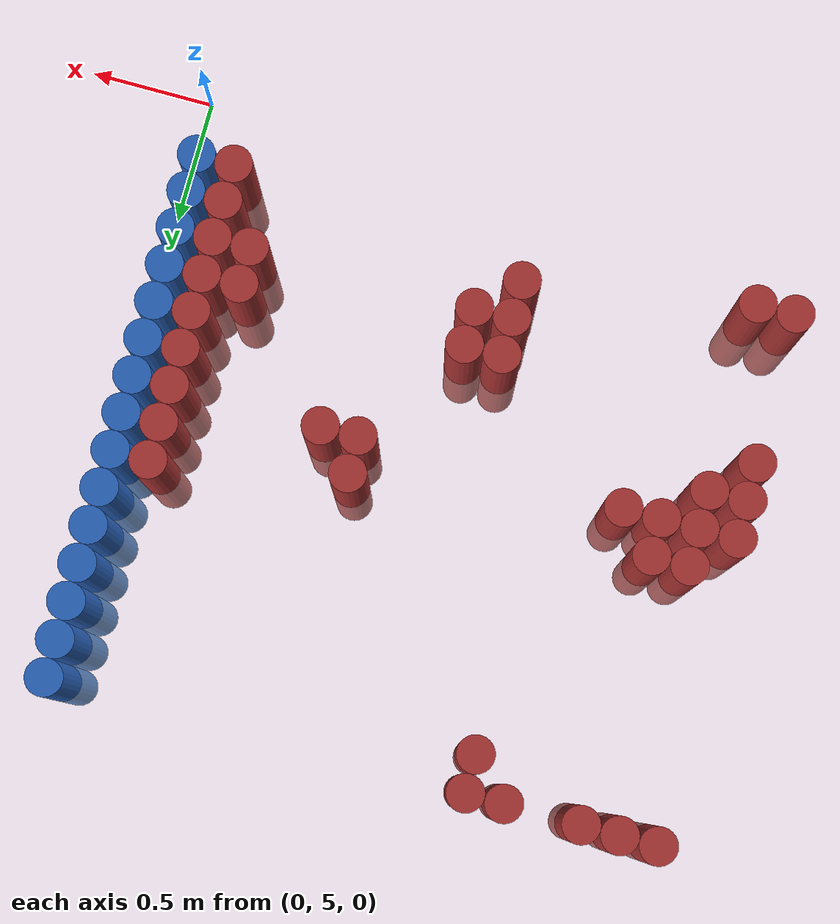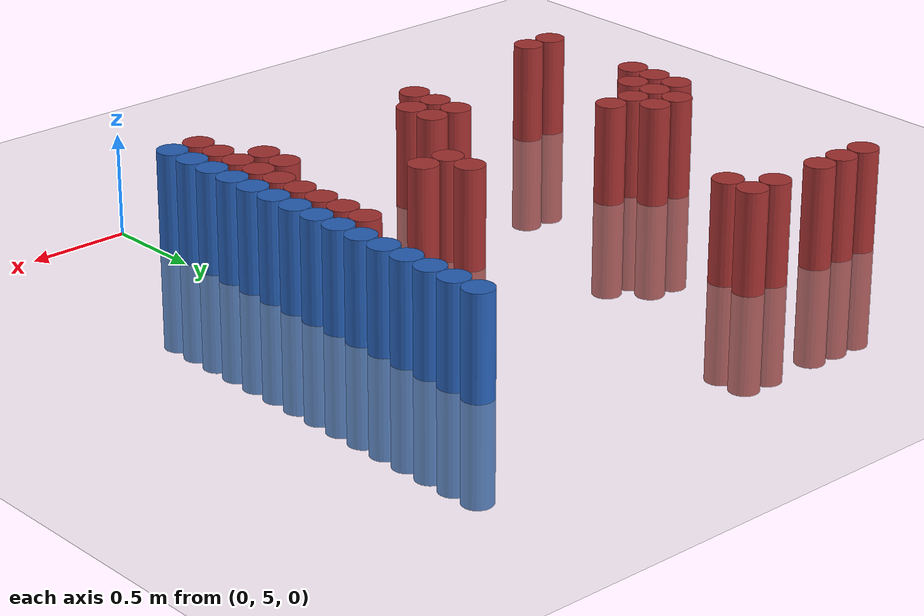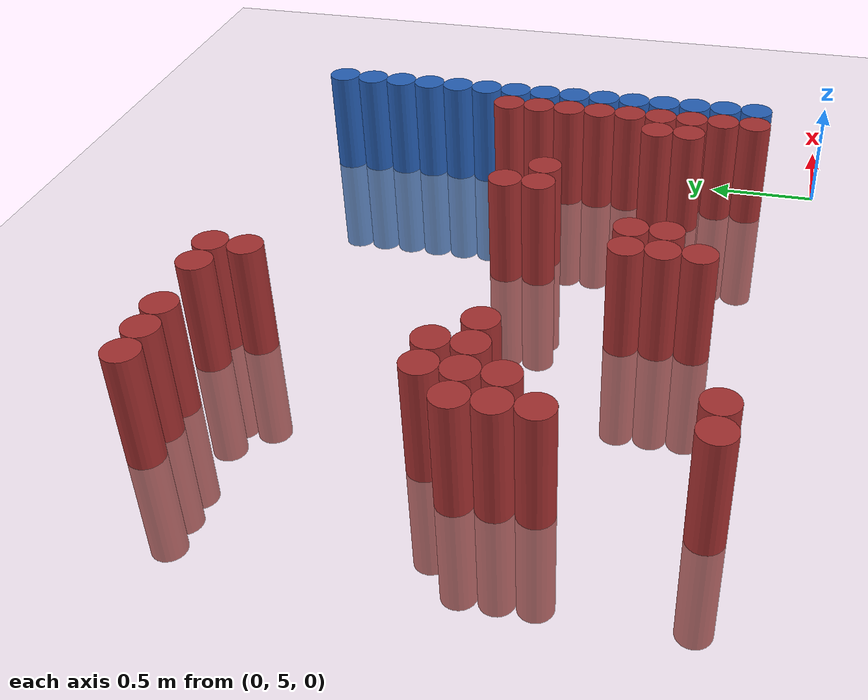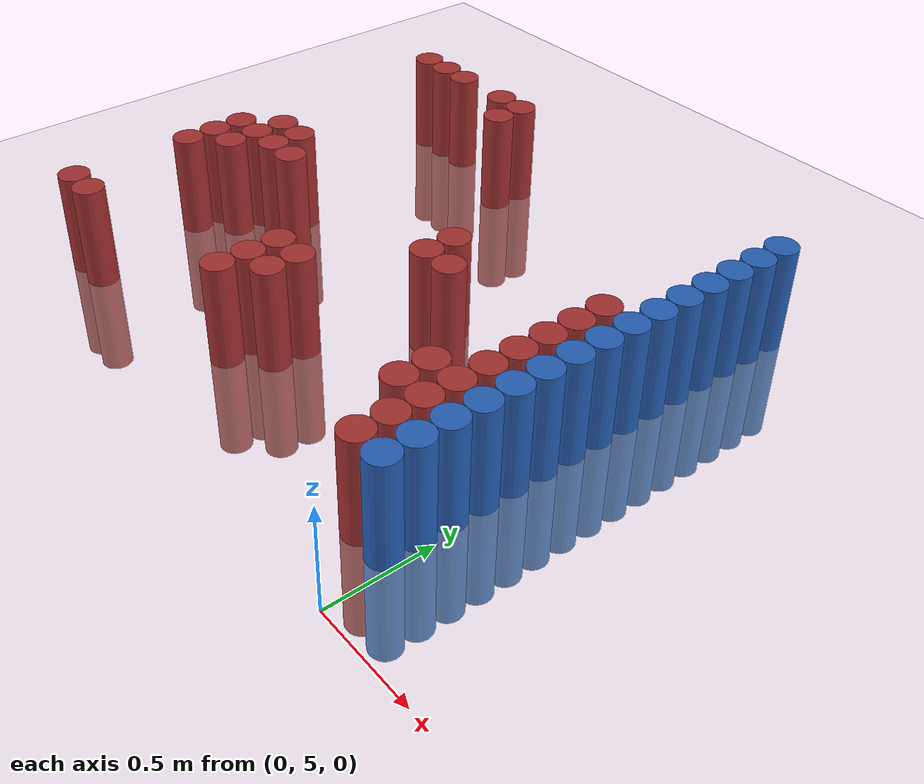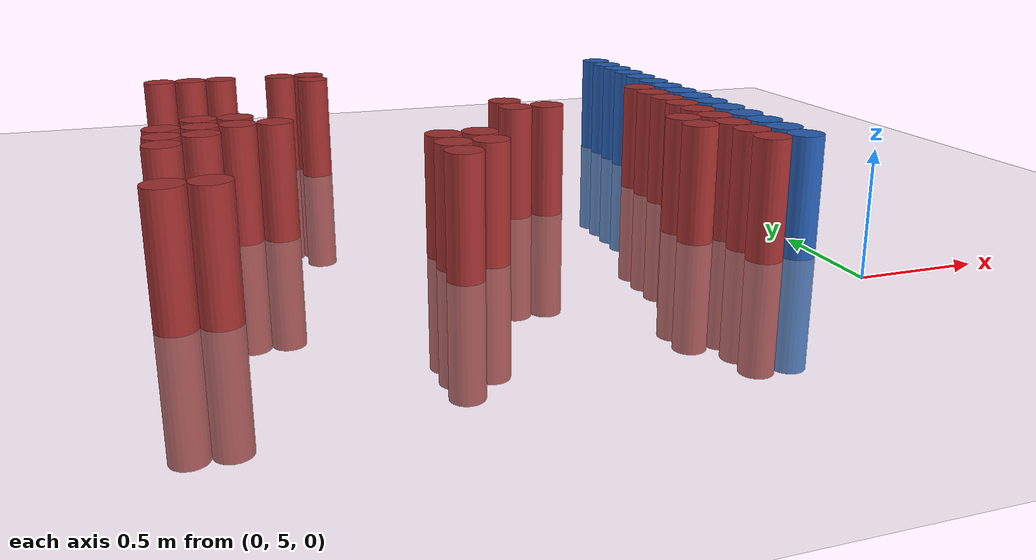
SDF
<sdf version="1.6">
 <world name="default">
  <model name="ground_plane">
   <static>1</static>
   <link name="link">
    <collision name="collision">
     <geometry><plane><normal>0 0 1</normal><size>100 100</size></plane></geometry>
     <surface><friction><ode><mu>100</mu><mu2>50</mu2></ode></friction></surface>
    </collision>
    <visual name="visual">
     <cast_shadows>0</cast_shadows>
     <geometry><plane><normal>0 0 1</normal><size>100 100</size></plane></geometry>
     <material>
      <script><uri>file://media/materials/scripts/gazebo.material</uri><name>Gazebo/Grey</name></script>
     </material>
    </visual>
   </link>
  </model>
  <model name="unit_cylinder_152">
   <static>1</static>
   <pose>-2.475000 5.325000 0.000000 0.000000 0.000000 0.000000</pose>
   <link name="link">
    <inertial>
     <mass>1</mass>
     <inertia><ixx>0.145833</ixx><ixy>0</ixy><ixz>0</ixz><iyy>0.145833</iyy><iyz>0</iyz><izz>0.125</izz></inertia>
    </inertial>
    <collision name="collision">
     <geometry><cylinder><radius>0.075000</radius><length>1</length></cylinder></geometry>
    </collision>
    <visual name="visual">
     <geometry><cylinder><radius>0.075000</radius><length>1</length></cylinder></geometry>
     <material>
      <ambient>0.648000 0.192000 0.192000 1</ambient>
      <diffuse>0.648000 0.192000 0.192000 1</diffuse>
     </material>
     <material>
      <script><name>Gazebo/Grey</name><uri>file://media/materials/scripts/gazebo.material</uri></script>
     </material>
    </visual>
   </link>
  </model>
  <model name="unit_cylinder_153">
   <static>1</static>
   <pose>-2.475000 5.925000 0.000000 0.000000 0.000000 0.000000</pose>
   <link name="link">
    <inertial>
     <mass>1</mass>
     <inertia><ixx>0.145833</ixx><ixy>0</ixy><ixz>0</ixz><iyy>0.145833</iyy><iyz>0</iyz><izz>0.125</izz></inertia>
    </inertial>
    <collision name="collision">
     <geometry><cylinder><radius>0.075000</radius><length>1</length></cylinder></geometry>
    </collision>
    <visual name="visual">
     <geometry><cylinder><radius>0.075000</radius><length>1</length></cylinder></geometry>
     <material>
      <ambient>0.648000 0.192000 0.192000 1</ambient>
      <diffuse>0.648000 0.192000 0.192000 1</diffuse>
     </material>
     <material>
      <script><name>Gazebo/Grey</name><uri>file://media/materials/scripts/gazebo.material</uri></script>
     </material>
    </visual>
   </link>
  </model>
  <model name="unit_cylinder_154">
   <static>1</static>
   <pose>-2.475000 6.075000 0.000000 0.000000 0.000000 0.000000</pose>
   <link name="link">
    <inertial>
     <mass>1</mass>
     <inertia><ixx>0.145833</ixx><ixy>0</ixy><ixz>0</ixz><iyy>0.145833</iyy><iyz>0</iyz><izz>0.125</izz></inertia>
    </inertial>
    <collision name="collision">
     <geometry><cylinder><radius>0.075000</radius><length>1</length></cylinder></geometry>
    </collision>
    <visual name="visual">
     <geometry><cylinder><radius>0.075000</radius><length>1</length></cylinder></geometry>
     <material>
      <ambient>0.648000 0.192000 0.192000 1</ambient>
      <diffuse>0.648000 0.192000 0.192000 1</diffuse>
     </material>
     <material>
      <script><name>Gazebo/Grey</name><uri>file://media/materials/scripts/gazebo.material</uri></script>
     </material>
    </visual>
   </link>
  </model>
  <model name="unit_cylinder_155">
   <static>1</static>
   <pose>-2.475000 6.225000 0.000000 0.000000 0.000000 0.000000</pose>
   <link name="link">
    <inertial>
     <mass>1</mass>
     <inertia><ixx>0.145833</ixx><ixy>0</ixy><ixz>0</ixz><iyy>0.145833</iyy><iyz>0</iyz><izz>0.125</izz></inertia>
    </inertial>
    <collision name="collision">
     <geometry><cylinder><radius>0.075000</radius><length>1</length></cylinder></geometry>
    </collision>
    <visual name="visual">
     <geometry><cylinder><radius>0.075000</radius><length>1</length></cylinder></geometry>
     <material>
      <ambient>0.648000 0.192000 0.192000 1</ambient>
      <diffuse>0.648000 0.192000 0.192000 1</diffuse>
     </material>
     <material>
      <script><name>Gazebo/Grey</name><uri>file://media/materials/scripts/gazebo.material</uri></script>
     </material>
    </visual>
   </link>
  </model>
  <model name="unit_cylinder_156">
   <static>1</static>
   <pose>-2.475000 7.425000 0.000000 0.000000 0.000000 0.000000</pose>
   <link name="link">
    <inertial>
     <mass>1</mass>
     <inertia><ixx>0.145833</ixx><ixy>0</ixy><ixz>0</ixz><iyy>0.145833</iyy><iyz>0</iyz><izz>0.125</izz></inertia>
    </inertial>
    <collision name="collision">
     <geometry><cylinder><radius>0.075000</radius><length>1</length></cylinder></geometry>
    </collision>
    <visual name="visual">
     <geometry><cylinder><radius>0.075000</radius><length>1</length></cylinder></geometry>
     <material>
      <ambient>0.648000 0.192000 0.192000 1</ambient>
      <diffuse>0.648000 0.192000 0.192000 1</diffuse>
     </material>
     <material>
      <script><name>Gazebo/Grey</name><uri>file://media/materials/scripts/gazebo.material</uri></script>
     </material>
    </visual>
   </link>
  </model>
  <model name="unit_cylinder_158">
   <static>1</static>
   <pose>-2.325000 5.325000 0.000000 0.000000 0.000000 0.000000</pose>
   <link name="link">
    <inertial>
     <mass>1</mass>
     <inertia><ixx>0.145833</ixx><ixy>0</ixy><ixz>0</ixz><iyy>0.145833</iyy><iyz>0</iyz><izz>0.125</izz></inertia>
    </inertial>
    <collision name="collision">
     <geometry><cylinder><radius>0.075000</radius><length>1</length></cylinder></geometry>
    </collision>
    <visual name="visual">
     <geometry><cylinder><radius>0.075000</radius><length>1</length></cylinder></geometry>
     <material>
      <ambient>0.648000 0.192000 0.192000 1</ambient>
      <diffuse>0.648000 0.192000 0.192000 1</diffuse>
     </material>
     <material>
      <script><name>Gazebo/Grey</name><uri>file://media/materials/scripts/gazebo.material</uri></script>
     </material>
    </visual>
   </link>
  </model>
  <model name="unit_cylinder_159">
   <static>1</static>
   <pose>-2.325000 6.075000 0.000000 0.000000 0.000000 0.000000</pose>
   <link name="link">
    <inertial>
     <mass>1</mass>
     <inertia><ixx>0.145833</ixx><ixy>0</ixy><ixz>0</ixz><iyy>0.145833</iyy><iyz>0</iyz><izz>0.125</izz></inertia>
    </inertial>
    <collision name="collision">
     <geometry><cylinder><radius>0.075000</radius><length>1</length></cylinder></geometry>
    </collision>
    <visual name="visual">
     <geometry><cylinder><radius>0.075000</radius><length>1</length></cylinder></geometry>
     <material>
      <ambient>0.648000 0.192000 0.192000 1</ambient>
      <diffuse>0.648000 0.192000 0.192000 1</diffuse>
     </material>
     <material>
      <script><name>Gazebo/Grey</name><uri>file://media/materials/scripts/gazebo.material</uri></script>
     </material>
    </visual>
   </link>
  </model>
  <model name="unit_cylinder_160">
   <static>1</static>
   <pose>-2.325000 6.225000 0.000000 0.000000 0.000000 0.000000</pose>
   <link name="link">
    <inertial>
     <mass>1</mass>
     <inertia><ixx>0.145833</ixx><ixy>0</ixy><ixz>0</ixz><iyy>0.145833</iyy><iyz>0</iyz><izz>0.125</izz></inertia>
    </inertial>
    <collision name="collision">
     <geometry><cylinder><radius>0.075000</radius><length>1</length></cylinder></geometry>
    </collision>
    <visual name="visual">
     <geometry><cylinder><radius>0.075000</radius><length>1</length></cylinder></geometry>
     <material>
      <ambient>0.648000 0.192000 0.192000 1</ambient>
      <diffuse>0.648000 0.192000 0.192000 1</diffuse>
     </material>
     <material>
      <script><name>Gazebo/Grey</name><uri>file://media/materials/scripts/gazebo.material</uri></script>
     </material>
    </visual>
   </link>
  </model>
  <model name="unit_cylinder_161">
   <static>1</static>
   <pose>-2.325000 6.375000 0.000000 0.000000 0.000000 0.000000</pose>
   <link name="link">
    <inertial>
     <mass>1</mass>
     <inertia><ixx>0.145833</ixx><ixy>0</ixy><ixz>0</ixz><iyy>0.145833</iyy><iyz>0</iyz><izz>0.125</izz></inertia>
    </inertial>
    <collision name="collision">
     <geometry><cylinder><radius>0.075000</radius><length>1</length></cylinder></geometry>
    </collision>
    <visual name="visual">
     <geometry><cylinder><radius>0.075000</radius><length>1</length></cylinder></geometry>
     <material>
      <ambient>0.648000 0.192000 0.192000 1</ambient>
      <diffuse>0.648000 0.192000 0.192000 1</diffuse>
     </material>
     <material>
      <script><name>Gazebo/Grey</name><uri>file://media/materials/scripts/gazebo.material</uri></script>
     </material>
    </visual>
   </link>
  </model>
  <model name="unit_cylinder_162">
   <static>1</static>
   <pose>-2.325000 7.425000 0.000000 0.000000 0.000000 0.000000</pose>
   <link name="link">
    <inertial>
     <mass>1</mass>
     <inertia><ixx>0.145833</ixx><ixy>0</ixy><ixz>0</ixz><iyy>0.145833</iyy><iyz>0</iyz><izz>0.125</izz></inertia>
    </inertial>
    <collision name="collision">
     <geometry><cylinder><radius>0.075000</radius><length>1</length></cylinder></geometry>
    </collision>
    <visual name="visual">
     <geometry><cylinder><radius>0.075000</radius><length>1</length></cylinder></geometry>
     <material>
      <ambient>0.648000 0.192000 0.192000 1</ambient>
      <diffuse>0.648000 0.192000 0.192000 1</diffuse>
     </material>
     <material>
      <script><name>Gazebo/Grey</name><uri>file://media/materials/scripts/gazebo.material</uri></script>
     </material>
    </visual>
   </link>
  </model>
  <model name="unit_cylinder_166">
   <static>1</static>
   <pose>-2.175000 6.225000 0.000000 0.000000 0.000000 0.000000</pose>
   <link name="link">
    <inertial>
     <mass>1</mass>
     <inertia><ixx>0.145833</ixx><ixy>0</ixy><ixz>0</ixz><iyy>0.145833</iyy><iyz>0</iyz><izz>0.125</izz></inertia>
    </inertial>
    <collision name="collision">
     <geometry><cylinder><radius>0.075000</radius><length>1</length></cylinder></geometry>
    </collision>
    <visual name="visual">
     <geometry><cylinder><radius>0.075000</radius><length>1</length></cylinder></geometry>
     <material>
      <ambient>0.648000 0.192000 0.192000 1</ambient>
      <diffuse>0.648000 0.192000 0.192000 1</diffuse>
     </material>
     <material>
      <script><name>Gazebo/Grey</name><uri>file://media/materials/scripts/gazebo.material</uri></script>
     </material>
    </visual>
   </link>
  </model>
  <model name="unit_cylinder_167">
   <static>1</static>
   <pose>-2.175000 6.375000 0.000000 0.000000 0.000000 0.000000</pose>
   <link name="link">
    <inertial>
     <mass>1</mass>
     <inertia><ixx>0.145833</ixx><ixy>0</ixy><ixz>0</ixz><iyy>0.145833</iyy><iyz>0</iyz><izz>0.125</izz></inertia>
    </inertial>
    <collision name="collision">
     <geometry><cylinder><radius>0.075000</radius><length>1</length></cylinder></geometry>
    </collision>
    <visual name="visual">
     <geometry><cylinder><radius>0.075000</radius><length>1</length></cylinder></geometry>
     <material>
      <ambient>0.648000 0.192000 0.192000 1</ambient>
      <diffuse>0.648000 0.192000 0.192000 1</diffuse>
     </material>
     <material>
      <script><name>Gazebo/Grey</name><uri>file://media/materials/scripts/gazebo.material</uri></script>
     </material>
    </visual>
   </link>
  </model>
  <model name="unit_cylinder_168">
   <static>1</static>
   <pose>-2.175000 7.425000 0.000000 0.000000 0.000000 0.000000</pose>
   <link name="link">
    <inertial>
     <mass>1</mass>
     <inertia><ixx>0.145833</ixx><ixy>0</ixy><ixz>0</ixz><iyy>0.145833</iyy><iyz>0</iyz><izz>0.125</izz></inertia>
    </inertial>
    <collision name="collision">
     <geometry><cylinder><radius>0.075000</radius><length>1</length></cylinder></geometry>
    </collision>
    <visual name="visual">
     <geometry><cylinder><radius>0.075000</radius><length>1</length></cylinder></geometry>
     <material>
      <ambient>0.648000 0.192000 0.192000 1</ambient>
      <diffuse>0.648000 0.192000 0.192000 1</diffuse>
     </material>
     <material>
      <script><name>Gazebo/Grey</name><uri>file://media/materials/scripts/gazebo.material</uri></script>
     </material>
    </visual>
   </link>
  </model>
  <model name="unit_cylinder_175">
   <static>1</static>
   <pose>-2.025000 6.225000 0.000000 0.000000 0.000000 0.000000</pose>
   <link name="link">
    <inertial>
     <mass>1</mass>
     <inertia><ixx>0.145833</ixx><ixy>0</ixy><ixz>0</ixz><iyy>0.145833</iyy><iyz>0</iyz><izz>0.125</izz></inertia>
    </inertial>
    <collision name="collision">
     <geometry><cylinder><radius>0.075000</radius><length>1</length></cylinder></geometry>
    </collision>
    <visual name="visual">
     <geometry><cylinder><radius>0.075000</radius><length>1</length></cylinder></geometry>
     <material>
      <ambient>0.648000 0.192000 0.192000 1</ambient>
      <diffuse>0.648000 0.192000 0.192000 1</diffuse>
     </material>
     <material>
      <script><name>Gazebo/Grey</name><uri>file://media/materials/scripts/gazebo.material</uri></script>
     </material>
    </visual>
   </link>
  </model>
  <model name="unit_cylinder_180">
   <static>1</static>
   <pose>-1.875000 7.425000 0.000000 0.000000 0.000000 0.000000</pose>
   <link name="link">
    <inertial>
     <mass>1</mass>
     <inertia><ixx>0.145833</ixx><ixy>0</ixy><ixz>0</ixz><iyy>0.145833</iyy><iyz>0</iyz><izz>0.125</izz></inertia>
    </inertial>
    <collision name="collision">
     <geometry><cylinder><radius>0.075000</radius><length>1</length></cylinder></geometry>
    </collision>
    <visual name="visual">
     <geometry><cylinder><radius>0.075000</radius><length>1</length></cylinder></geometry>
     <material>
      <ambient>0.648000 0.192000 0.192000 1</ambient>
      <diffuse>0.648000 0.192000 0.192000 1</diffuse>
     </material>
     <material>
      <script><name>Gazebo/Grey</name><uri>file://media/materials/scripts/gazebo.material</uri></script>
     </material>
    </visual>
   </link>
  </model>
  <model name="unit_cylinder_183">
   <static>1</static>
   <pose>-1.725000 7.275000 0.000000 0.000000 0.000000 0.000000</pose>
   <link name="link">
    <inertial>
     <mass>1</mass>
     <inertia><ixx>0.145833</ixx><ixy>0</ixy><ixz>0</ixz><iyy>0.145833</iyy><iyz>0</iyz><izz>0.125</izz></inertia>
    </inertial>
    <collision name="collision">
     <geometry><cylinder><radius>0.075000</radius><length>1</length></cylinder></geometry>
    </collision>
    <visual name="visual">
     <geometry><cylinder><radius>0.075000</radius><length>1</length></cylinder></geometry>
     <material>
      <ambient>0.648000 0.192000 0.192000 1</ambient>
      <diffuse>0.648000 0.192000 0.192000 1</diffuse>
     </material>
     <material>
      <script><name>Gazebo/Grey</name><uri>file://media/materials/scripts/gazebo.material</uri></script>
     </material>
    </visual>
   </link>
  </model>
  <model name="unit_cylinder_184">
   <static>1</static>
   <pose>-1.725000 7.425000 0.000000 0.000000 0.000000 0.000000</pose>
   <link name="link">
    <inertial>
     <mass>1</mass>
     <inertia><ixx>0.145833</ixx><ixy>0</ixy><ixz>0</ixz><iyy>0.145833</iyy><iyz>0</iyz><izz>0.125</izz></inertia>
    </inertial>
    <collision name="collision">
     <geometry><cylinder><radius>0.075000</radius><length>1</length></cylinder></geometry>
    </collision>
    <visual name="visual">
     <geometry><cylinder><radius>0.075000</radius><length>1</length></cylinder></geometry>
     <material>
      <ambient>0.648000 0.192000 0.192000 1</ambient>
      <diffuse>0.648000 0.192000 0.192000 1</diffuse>
     </material>
     <material>
      <script><name>Gazebo/Grey</name><uri>file://media/materials/scripts/gazebo.material</uri></script>
     </material>
    </visual>
   </link>
  </model>
  <model name="unit_cylinder_185">
   <static>1</static>
   <pose>-1.425000 5.475000 0.000000 0.000000 0.000000 0.000000</pose>
   <link name="link">
    <inertial>
     <mass>1</mass>
     <inertia><ixx>0.145833</ixx><ixy>0</ixy><ixz>0</ixz><iyy>0.145833</iyy><iyz>0</iyz><izz>0.125</izz></inertia>
    </inertial>
    <collision name="collision">
     <geometry><cylinder><radius>0.075000</radius><length>1</length></cylinder></geometry>
    </collision>
    <visual name="visual">
     <geometry><cylinder><radius>0.075000</radius><length>1</length></cylinder></geometry>
     <material>
      <ambient>0.648000 0.192000 0.192000 1</ambient>
      <diffuse>0.648000 0.192000 0.192000 1</diffuse>
     </material>
     <material>
      <script><name>Gazebo/Grey</name><uri>file://media/materials/scripts/gazebo.material</uri></script>
     </material>
    </visual>
   </link>
  </model>
  <model name="unit_cylinder_186">
   <static>1</static>
   <pose>-1.425000 5.625000 0.000000 0.000000 0.000000 0.000000</pose>
   <link name="link">
    <inertial>
     <mass>1</mass>
     <inertia><ixx>0.145833</ixx><ixy>0</ixy><ixz>0</ixz><iyy>0.145833</iyy><iyz>0</iyz><izz>0.125</izz></inertia>
    </inertial>
    <collision name="collision">
     <geometry><cylinder><radius>0.075000</radius><length>1</length></cylinder></geometry>
    </collision>
    <visual name="visual">
     <geometry><cylinder><radius>0.075000</radius><length>1</length></cylinder></geometry>
     <material>
      <ambient>0.648000 0.192000 0.192000 1</ambient>
      <diffuse>0.648000 0.192000 0.192000 1</diffuse>
     </material>
     <material>
      <script><name>Gazebo/Grey</name><uri>file://media/materials/scripts/gazebo.material</uri></script>
     </material>
    </visual>
   </link>
  </model>
  <model name="unit_cylinder_187">
   <static>1</static>
   <pose>-1.425000 5.775000 0.000000 0.000000 0.000000 0.000000</pose>
   <link name="link">
    <inertial>
     <mass>1</mass>
     <inertia><ixx>0.145833</ixx><ixy>0</ixy><ixz>0</ixz><iyy>0.145833</iyy><iyz>0</iyz><izz>0.125</izz></inertia>
    </inertial>
    <collision name="collision">
     <geometry><cylinder><radius>0.075000</radius><length>1</length></cylinder></geometry>
    </collision>
    <visual name="visual">
     <geometry><cylinder><radius>0.075000</radius><length>1</length></cylinder></geometry>
     <material>
      <ambient>0.648000 0.192000 0.192000 1</ambient>
      <diffuse>0.648000 0.192000 0.192000 1</diffuse>
     </material>
     <material>
      <script><name>Gazebo/Grey</name><uri>file://media/materials/scripts/gazebo.material</uri></script>
     </material>
    </visual>
   </link>
  </model>
  <model name="unit_cylinder_188">
   <static>1</static>
   <pose>-1.275000 5.625000 0.000000 0.000000 0.000000 0.000000</pose>
   <link name="link">
    <inertial>
     <mass>1</mass>
     <inertia><ixx>0.145833</ixx><ixy>0</ixy><ixz>0</ixz><iyy>0.145833</iyy><iyz>0</iyz><izz>0.125</izz></inertia>
    </inertial>
    <collision name="collision">
     <geometry><cylinder><radius>0.075000</radius><length>1</length></cylinder></geometry>
    </collision>
    <visual name="visual">
     <geometry><cylinder><radius>0.075000</radius><length>1</length></cylinder></geometry>
     <material>
      <ambient>0.648000 0.192000 0.192000 1</ambient>
      <diffuse>0.648000 0.192000 0.192000 1</diffuse>
     </material>
     <material>
      <script><name>Gazebo/Grey</name><uri>file://media/materials/scripts/gazebo.material</uri></script>
     </material>
    </visual>
   </link>
  </model>
  <model name="unit_cylinder_189">
   <static>1</static>
   <pose>-1.275000 5.775000 0.000000 0.000000 0.000000 0.000000</pose>
   <link name="link">
    <inertial>
     <mass>1</mass>
     <inertia><ixx>0.145833</ixx><ixy>0</ixy><ixz>0</ixz><iyy>0.145833</iyy><iyz>0</iyz><izz>0.125</izz></inertia>
    </inertial>
    <collision name="collision">
     <geometry><cylinder><radius>0.075000</radius><length>1</length></cylinder></geometry>
    </collision>
    <visual name="visual">
     <geometry><cylinder><radius>0.075000</radius><length>1</length></cylinder></geometry>
     <material>
      <ambient>0.648000 0.192000 0.192000 1</ambient>
      <diffuse>0.648000 0.192000 0.192000 1</diffuse>
     </material>
     <material>
      <script><name>Gazebo/Grey</name><uri>file://media/materials/scripts/gazebo.material</uri></script>
     </material>
    </visual>
   </link>
  </model>
  <model name="unit_cylinder_191">
   <static>1</static>
   <pose>-0.975000 6.225000 0.000000 0.000000 0.000000 0.000000</pose>
   <link name="link">
    <inertial>
     <mass>1</mass>
     <inertia><ixx>0.145833</ixx><ixy>0</ixy><ixz>0</ixz><iyy>0.145833</iyy><iyz>0</iyz><izz>0.125</izz></inertia>
    </inertial>
    <collision name="collision">
     <geometry><cylinder><radius>0.075000</radius><length>1</length></cylinder></geometry>
    </collision>
    <visual name="visual">
     <geometry><cylinder><radius>0.075000</radius><length>1</length></cylinder></geometry>
     <material>
      <ambient>0.648000 0.192000 0.192000 1</ambient>
      <diffuse>0.648000 0.192000 0.192000 1</diffuse>
     </material>
     <material>
      <script><name>Gazebo/Grey</name><uri>file://media/materials/scripts/gazebo.material</uri></script>
     </material>
    </visual>
   </link>
  </model>
  <model name="unit_cylinder_192">
   <static>1</static>
   <pose>-0.975000 6.375000 0.000000 0.000000 0.000000 0.000000</pose>
   <link name="link">
    <inertial>
     <mass>1</mass>
     <inertia><ixx>0.145833</ixx><ixy>0</ixy><ixz>0</ixz><iyy>0.145833</iyy><iyz>0</iyz><izz>0.125</izz></inertia>
    </inertial>
    <collision name="collision">
     <geometry><cylinder><radius>0.075000</radius><length>1</length></cylinder></geometry>
    </collision>
    <visual name="visual">
     <geometry><cylinder><radius>0.075000</radius><length>1</length></cylinder></geometry>
     <material>
      <ambient>0.648000 0.192000 0.192000 1</ambient>
      <diffuse>0.648000 0.192000 0.192000 1</diffuse>
     </material>
     <material>
      <script><name>Gazebo/Grey</name><uri>file://media/materials/scripts/gazebo.material</uri></script>
     </material>
    </visual>
   </link>
  </model>
  <model name="unit_cylinder_195">
   <static>1</static>
   <pose>-0.825000 6.225000 0.000000 0.000000 0.000000 0.000000</pose>
   <link name="link">
    <inertial>
     <mass>1</mass>
     <inertia><ixx>0.145833</ixx><ixy>0</ixy><ixz>0</ixz><iyy>0.145833</iyy><iyz>0</iyz><izz>0.125</izz></inertia>
    </inertial>
    <collision name="collision">
     <geometry><cylinder><radius>0.075000</radius><length>1</length></cylinder></geometry>
    </collision>
    <visual name="visual">
     <geometry><cylinder><radius>0.075000</radius><length>1</length></cylinder></geometry>
     <material>
      <ambient>0.648000 0.192000 0.192000 1</ambient>
      <diffuse>0.648000 0.192000 0.192000 1</diffuse>
     </material>
     <material>
      <script><name>Gazebo/Grey</name><uri>file://media/materials/scripts/gazebo.material</uri></script>
     </material>
    </visual>
   </link>
  </model>
  <model name="unit_cylinder_200">
   <static>1</static>
   <pose>-0.375000 5.625000 0.000000 0.000000 0.000000 0.000000</pose>
   <link name="link">
    <inertial>
     <mass>1</mass>
     <inertia><ixx>0.145833</ixx><ixy>0</ixy><ixz>0</ixz><iyy>0.145833</iyy><iyz>0</iyz><izz>0.125</izz></inertia>
    </inertial>
    <collision name="collision">
     <geometry><cylinder><radius>0.075000</radius><length>1</length></cylinder></geometry>
    </collision>
    <visual name="visual">
     <geometry><cylinder><radius>0.075000</radius><length>1</length></cylinder></geometry>
     <material>
      <ambient>0.648000 0.192000 0.192000 1</ambient>
      <diffuse>0.648000 0.192000 0.192000 1</diffuse>
     </material>
     <material>
      <script><name>Gazebo/Grey</name><uri>file://media/materials/scripts/gazebo.material</uri></script>
     </material>
    </visual>
   </link>
  </model>
  <model name="unit_cylinder_201">
   <static>1</static>
   <pose>-0.375000 5.775000 0.000000 0.000000 0.000000 0.000000</pose>
   <link name="link">
    <inertial>
     <mass>1</mass>
     <inertia><ixx>0.145833</ixx><ixy>0</ixy><ixz>0</ixz><iyy>0.145833</iyy><iyz>0</iyz><izz>0.125</izz></inertia>
    </inertial>
    <collision name="collision">
     <geometry><cylinder><radius>0.075000</radius><length>1</length></cylinder></geometry>
    </collision>
    <visual name="visual">
     <geometry><cylinder><radius>0.075000</radius><length>1</length></cylinder></geometry>
     <material>
      <ambient>0.648000 0.192000 0.192000 1</ambient>
      <diffuse>0.648000 0.192000 0.192000 1</diffuse>
     </material>
     <material>
      <script><name>Gazebo/Grey</name><uri>file://media/materials/scripts/gazebo.material</uri></script>
     </material>
    </visual>
   </link>
  </model>
  <model name="unit_cylinder_210">
   <static>1</static>
   <pose>-0.225000 5.325000 0.000000 0.000000 0.000000 0.000000</pose>
   <link name="link">
    <inertial>
     <mass>1</mass>
     <inertia><ixx>0.145833</ixx><ixy>0</ixy><ixz>0</ixz><iyy>0.145833</iyy><iyz>0</iyz><izz>0.125</izz></inertia>
    </inertial>
    <collision name="collision">
     <geometry><cylinder><radius>0.075000</radius><length>1</length></cylinder></geometry>
    </collision>
    <visual name="visual">
     <geometry><cylinder><radius>0.075000</radius><length>1</length></cylinder></geometry>
     <material>
      <ambient>0.648000 0.192000 0.192000 1</ambient>
      <diffuse>0.648000 0.192000 0.192000 1</diffuse>
     </material>
     <material>
      <script><name>Gazebo/Grey</name><uri>file://media/materials/scripts/gazebo.material</uri></script>
     </material>
    </visual>
   </link>
  </model>
  <model name="unit_cylinder_211">
   <static>1</static>
   <pose>-0.225000 5.475000 0.000000 0.000000 0.000000 0.000000</pose>
   <link name="link">
    <inertial>
     <mass>1</mass>
     <inertia><ixx>0.145833</ixx><ixy>0</ixy><ixz>0</ixz><iyy>0.145833</iyy><iyz>0</iyz><izz>0.125</izz></inertia>
    </inertial>
    <collision name="collision">
     <geometry><cylinder><radius>0.075000</radius><length>1</length></cylinder></geometry>
    </collision>
    <visual name="visual">
     <geometry><cylinder><radius>0.075000</radius><length>1</length></cylinder></geometry>
     <material>
      <ambient>0.648000 0.192000 0.192000 1</ambient>
      <diffuse>0.648000 0.192000 0.192000 1</diffuse>
     </material>
     <material>
      <script><name>Gazebo/Grey</name><uri>file://media/materials/scripts/gazebo.material</uri></script>
     </material>
    </visual>
   </link>
  </model>
  <model name="unit_cylinder_212">
   <static>1</static>
   <pose>-0.225000 5.625000 0.000000 0.000000 0.000000 0.000000</pose>
   <link name="link">
    <inertial>
     <mass>1</mass>
     <inertia><ixx>0.145833</ixx><ixy>0</ixy><ixz>0</ixz><iyy>0.145833</iyy><iyz>0</iyz><izz>0.125</izz></inertia>
    </inertial>
    <collision name="collision">
     <geometry><cylinder><radius>0.075000</radius><length>1</length></cylinder></geometry>
    </collision>
    <visual name="visual">
     <geometry><cylinder><radius>0.075000</radius><length>1</length></cylinder></geometry>
     <material>
      <ambient>0.648000 0.192000 0.192000 1</ambient>
      <diffuse>0.648000 0.192000 0.192000 1</diffuse>
     </material>
     <material>
      <script><name>Gazebo/Grey</name><uri>file://media/materials/scripts/gazebo.material</uri></script>
     </material>
    </visual>
   </link>
  </model>
  <model name="unit_cylinder_213">
   <static>1</static>
   <pose>-0.225000 5.775000 0.000000 0.000000 0.000000 0.000000</pose>
   <link name="link">
    <inertial>
     <mass>1</mass>
     <inertia><ixx>0.145833</ixx><ixy>0</ixy><ixz>0</ixz><iyy>0.145833</iyy><iyz>0</iyz><izz>0.125</izz></inertia>
    </inertial>
    <collision name="collision">
     <geometry><cylinder><radius>0.075000</radius><length>1</length></cylinder></geometry>
    </collision>
    <visual name="visual">
     <geometry><cylinder><radius>0.075000</radius><length>1</length></cylinder></geometry>
     <material>
      <ambient>0.648000 0.192000 0.192000 1</ambient>
      <diffuse>0.648000 0.192000 0.192000 1</diffuse>
     </material>
     <material>
      <script><name>Gazebo/Grey</name><uri>file://media/materials/scripts/gazebo.material</uri></script>
     </material>
    </visual>
   </link>
  </model>
  <model name="unit_cylinder_214">
   <static>1</static>
   <pose>-0.225000 5.925000 0.000000 0.000000 0.000000 0.000000</pose>
   <link name="link">
    <inertial>
     <mass>1</mass>
     <inertia><ixx>0.145833</ixx><ixy>0</ixy><ixz>0</ixz><iyy>0.145833</iyy><iyz>0</iyz><izz>0.125</izz></inertia>
    </inertial>
    <collision name="collision">
     <geometry><cylinder><radius>0.075000</radius><length>1</length></cylinder></geometry>
    </collision>
    <visual name="visual">
     <geometry><cylinder><radius>0.075000</radius><length>1</length></cylinder></geometry>
     <material>
      <ambient>0.648000 0.192000 0.192000 1</ambient>
      <diffuse>0.648000 0.192000 0.192000 1</diffuse>
     </material>
     <material>
      <script><name>Gazebo/Grey</name><uri>file://media/materials/scripts/gazebo.material</uri></script>
     </material>
    </visual>
   </link>
  </model>
  <model name="unit_cylinder_215">
   <static>1</static>
   <pose>-0.225000 6.075000 0.000000 0.000000 0.000000 0.000000</pose>
   <link name="link">
    <inertial>
     <mass>1</mass>
     <inertia><ixx>0.145833</ixx><ixy>0</ixy><ixz>0</ixz><iyy>0.145833</iyy><iyz>0</iyz><izz>0.125</izz></inertia>
    </inertial>
    <collision name="collision">
     <geometry><cylinder><radius>0.075000</radius><length>1</length></cylinder></geometry>
    </collision>
    <visual name="visual">
     <geometry><cylinder><radius>0.075000</radius><length>1</length></cylinder></geometry>
     <material>
      <ambient>0.648000 0.192000 0.192000 1</ambient>
      <diffuse>0.648000 0.192000 0.192000 1</diffuse>
     </material>
     <material>
      <script><name>Gazebo/Grey</name><uri>file://media/materials/scripts/gazebo.material</uri></script>
     </material>
    </visual>
   </link>
  </model>
  <model name="unit_cylinder_216">
   <static>1</static>
   <pose>-0.225000 6.225000 0.000000 0.000000 0.000000 0.000000</pose>
   <link name="link">
    <inertial>
     <mass>1</mass>
     <inertia><ixx>0.145833</ixx><ixy>0</ixy><ixz>0</ixz><iyy>0.145833</iyy><iyz>0</iyz><izz>0.125</izz></inertia>
    </inertial>
    <collision name="collision">
     <geometry><cylinder><radius>0.075000</radius><length>1</length></cylinder></geometry>
    </collision>
    <visual name="visual">
     <geometry><cylinder><radius>0.075000</radius><length>1</length></cylinder></geometry>
     <material>
      <ambient>0.648000 0.192000 0.192000 1</ambient>
      <diffuse>0.648000 0.192000 0.192000 1</diffuse>
     </material>
     <material>
      <script><name>Gazebo/Grey</name><uri>file://media/materials/scripts/gazebo.material</uri></script>
     </material>
    </visual>
   </link>
  </model>
  <model name="unit_cylinder_217">
   <static>1</static>
   <pose>-0.225000 6.375000 0.000000 0.000000 0.000000 0.000000</pose>
   <link name="link">
    <inertial>
     <mass>1</mass>
     <inertia><ixx>0.145833</ixx><ixy>0</ixy><ixz>0</ixz><iyy>0.145833</iyy><iyz>0</iyz><izz>0.125</izz></inertia>
    </inertial>
    <collision name="collision">
     <geometry><cylinder><radius>0.075000</radius><length>1</length></cylinder></geometry>
    </collision>
    <visual name="visual">
     <geometry><cylinder><radius>0.075000</radius><length>1</length></cylinder></geometry>
     <material>
      <ambient>0.648000 0.192000 0.192000 1</ambient>
      <diffuse>0.648000 0.192000 0.192000 1</diffuse>
     </material>
     <material>
      <script><name>Gazebo/Grey</name><uri>file://media/materials/scripts/gazebo.material</uri></script>
     </material>
    </visual>
   </link>
  </model>
  <model name="unit_cylinder_218">
   <static>1</static>
   <pose>-0.225000 6.525000 0.000000 0.000000 0.000000 0.000000</pose>
   <link name="link">
    <inertial>
     <mass>1</mass>
     <inertia><ixx>0.145833</ixx><ixy>0</ixy><ixz>0</ixz><iyy>0.145833</iyy><iyz>0</iyz><izz>0.125</izz></inertia>
    </inertial>
    <collision name="collision">
     <geometry><cylinder><radius>0.075000</radius><length>1</length></cylinder></geometry>
    </collision>
    <visual name="visual">
     <geometry><cylinder><radius>0.075000</radius><length>1</length></cylinder></geometry>
     <material>
      <ambient>0.648000 0.192000 0.192000 1</ambient>
      <diffuse>0.648000 0.192000 0.192000 1</diffuse>
     </material>
     <material>
      <script><name>Gazebo/Grey</name><uri>file://media/materials/scripts/gazebo.material</uri></script>
     </material>
    </visual>
   </link>
  </model>
  <model name="unit_cylinder_229">
   <static>1</static>
   <pose>-0.075000 5.325000 0.000000 0.000000 0.000000 0.000000</pose>
   <link name="link">
    <inertial>
     <mass>1</mass>
     <inertia><ixx>0.145833</ixx><ixy>0</ixy><ixz>0</ixz><iyy>0.145833</iyy><iyz>0</iyz><izz>0.125</izz></inertia>
    </inertial>
    <collision name="collision">
     <geometry><cylinder><radius>0.075000</radius><length>1</length></cylinder></geometry>
    </collision>
    <visual name="visual">
     <geometry><cylinder><radius>0.075000</radius><length>1</length></cylinder></geometry>
     <material>
      <ambient>0.152000 0.379000 0.720000 1</ambient>
      <diffuse>0.152000 0.379000 0.720000 1</diffuse>
     </material>
     <material>
      <script><name>Gazebo/Grey</name><uri>file://media/materials/scripts/gazebo.material</uri></script>
     </material>
    </visual>
   </link>
  </model>
  <model name="unit_cylinder_230">
   <static>1</static>
   <pose>-0.075000 5.475000 0.000000 0.000000 0.000000 0.000000</pose>
   <link name="link">
    <inertial>
     <mass>1</mass>
     <inertia><ixx>0.145833</ixx><ixy>0</ixy><ixz>0</ixz><iyy>0.145833</iyy><iyz>0</iyz><izz>0.125</izz></inertia>
    </inertial>
    <collision name="collision">
     <geometry><cylinder><radius>0.075000</radius><length>1</length></cylinder></geometry>
    </collision>
    <visual name="visual">
     <geometry><cylinder><radius>0.075000</radius><length>1</length></cylinder></geometry>
     <material>
      <ambient>0.152000 0.379000 0.720000 1</ambient>
      <diffuse>0.152000 0.379000 0.720000 1</diffuse>
     </material>
     <material>
      <script><name>Gazebo/Grey</name><uri>file://media/materials/scripts/gazebo.material</uri></script>
     </material>
    </visual>
   </link>
  </model>
  <model name="unit_cylinder_231">
   <static>1</static>
   <pose>-0.075000 5.625000 0.000000 0.000000 0.000000 0.000000</pose>
   <link name="link">
    <inertial>
     <mass>1</mass>
     <inertia><ixx>0.145833</ixx><ixy>0</ixy><ixz>0</ixz><iyy>0.145833</iyy><iyz>0</iyz><izz>0.125</izz></inertia>
    </inertial>
    <collision name="collision">
     <geometry><cylinder><radius>0.075000</radius><length>1</length></cylinder></geometry>
    </collision>
    <visual name="visual">
     <geometry><cylinder><radius>0.075000</radius><length>1</length></cylinder></geometry>
     <material>
      <ambient>0.152000 0.379000 0.720000 1</ambient>
      <diffuse>0.152000 0.379000 0.720000 1</diffuse>
     </material>
     <material>
      <script><name>Gazebo/Grey</name><uri>file://media/materials/scripts/gazebo.material</uri></script>
     </material>
    </visual>
   </link>
  </model>
  <model name="unit_cylinder_232">
   <static>1</static>
   <pose>-0.075000 5.775000 0.000000 0.000000 0.000000 0.000000</pose>
   <link name="link">
    <inertial>
     <mass>1</mass>
     <inertia><ixx>0.145833</ixx><ixy>0</ixy><ixz>0</ixz><iyy>0.145833</iyy><iyz>0</iyz><izz>0.125</izz></inertia>
    </inertial>
    <collision name="collision">
     <geometry><cylinder><radius>0.075000</radius><length>1</length></cylinder></geometry>
    </collision>
    <visual name="visual">
     <geometry><cylinder><radius>0.075000</radius><length>1</length></cylinder></geometry>
     <material>
      <ambient>0.152000 0.379000 0.720000 1</ambient>
      <diffuse>0.152000 0.379000 0.720000 1</diffuse>
     </material>
     <material>
      <script><name>Gazebo/Grey</name><uri>file://media/materials/scripts/gazebo.material</uri></script>
     </material>
    </visual>
   </link>
  </model>
  <model name="unit_cylinder_233">
   <static>1</static>
   <pose>-0.075000 5.925000 0.000000 0.000000 0.000000 0.000000</pose>
   <link name="link">
    <inertial>
     <mass>1</mass>
     <inertia><ixx>0.145833</ixx><ixy>0</ixy><ixz>0</ixz><iyy>0.145833</iyy><iyz>0</iyz><izz>0.125</izz></inertia>
    </inertial>
    <collision name="collision">
     <geometry><cylinder><radius>0.075000</radius><length>1</length></cylinder></geometry>
    </collision>
    <visual name="visual">
     <geometry><cylinder><radius>0.075000</radius><length>1</length></cylinder></geometry>
     <material>
      <ambient>0.152000 0.379000 0.720000 1</ambient>
      <diffuse>0.152000 0.379000 0.720000 1</diffuse>
     </material>
     <material>
      <script><name>Gazebo/Grey</name><uri>file://media/materials/scripts/gazebo.material</uri></script>
     </material>
    </visual>
   </link>
  </model>
  <model name="unit_cylinder_234">
   <static>1</static>
   <pose>-0.075000 6.075000 0.000000 0.000000 0.000000 0.000000</pose>
   <link name="link">
    <inertial>
     <mass>1</mass>
     <inertia><ixx>0.145833</ixx><ixy>0</ixy><ixz>0</ixz><iyy>0.145833</iyy><iyz>0</iyz><izz>0.125</izz></inertia>
    </inertial>
    <collision name="collision">
     <geometry><cylinder><radius>0.075000</radius><length>1</length></cylinder></geometry>
    </collision>
    <visual name="visual">
     <geometry><cylinder><radius>0.075000</radius><length>1</length></cylinder></geometry>
     <material>
      <ambient>0.152000 0.379000 0.720000 1</ambient>
      <diffuse>0.152000 0.379000 0.720000 1</diffuse>
     </material>
     <material>
      <script><name>Gazebo/Grey</name><uri>file://media/materials/scripts/gazebo.material</uri></script>
     </material>
    </visual>
   </link>
  </model>
  <model name="unit_cylinder_235">
   <static>1</static>
   <pose>-0.075000 6.225000 0.000000 0.000000 0.000000 0.000000</pose>
   <link name="link">
    <inertial>
     <mass>1</mass>
     <inertia><ixx>0.145833</ixx><ixy>0</ixy><ixz>0</ixz><iyy>0.145833</iyy><iyz>0</iyz><izz>0.125</izz></inertia>
    </inertial>
    <collision name="collision">
     <geometry><cylinder><radius>0.075000</radius><length>1</length></cylinder></geometry>
    </collision>
    <visual name="visual">
     <geometry><cylinder><radius>0.075000</radius><length>1</length></cylinder></geometry>
     <material>
      <ambient>0.152000 0.379000 0.720000 1</ambient>
      <diffuse>0.152000 0.379000 0.720000 1</diffuse>
     </material>
     <material>
      <script><name>Gazebo/Grey</name><uri>file://media/materials/scripts/gazebo.material</uri></script>
     </material>
    </visual>
   </link>
  </model>
  <model name="unit_cylinder_236">
   <static>1</static>
   <pose>-0.075000 6.375000 0.000000 0.000000 0.000000 0.000000</pose>
   <link name="link">
    <inertial>
     <mass>1</mass>
     <inertia><ixx>0.145833</ixx><ixy>0</ixy><ixz>0</ixz><iyy>0.145833</iyy><iyz>0</iyz><izz>0.125</izz></inertia>
    </inertial>
    <collision name="collision">
     <geometry><cylinder><radius>0.075000</radius><length>1</length></cylinder></geometry>
    </collision>
    <visual name="visual">
     <geometry><cylinder><radius>0.075000</radius><length>1</length></cylinder></geometry>
     <material>
      <ambient>0.152000 0.379000 0.720000 1</ambient>
      <diffuse>0.152000 0.379000 0.720000 1</diffuse>
     </material>
     <material>
      <script><name>Gazebo/Grey</name><uri>file://media/materials/scripts/gazebo.material</uri></script>
     </material>
    </visual>
   </link>
  </model>
  <model name="unit_cylinder_237">
   <static>1</static>
   <pose>-0.075000 6.525000 0.000000 0.000000 0.000000 0.000000</pose>
   <link name="link">
    <inertial>
     <mass>1</mass>
     <inertia><ixx>0.145833</ixx><ixy>0</ixy><ixz>0</ixz><iyy>0.145833</iyy><iyz>0</iyz><izz>0.125</izz></inertia>
    </inertial>
    <collision name="collision">
     <geometry><cylinder><radius>0.075000</radius><length>1</length></cylinder></geometry>
    </collision>
    <visual name="visual">
     <geometry><cylinder><radius>0.075000</radius><length>1</length></cylinder></geometry>
     <material>
      <ambient>0.152000 0.379000 0.720000 1</ambient>
      <diffuse>0.152000 0.379000 0.720000 1</diffuse>
     </material>
     <material>
      <script><name>Gazebo/Grey</name><uri>file://media/materials/scripts/gazebo.material</uri></script>
     </material>
    </visual>
   </link>
  </model>
  <model name="unit_cylinder_238">
   <static>1</static>
   <pose>-0.075000 6.675000 0.000000 0.000000 0.000000 0.000000</pose>
   <link name="link">
    <inertial>
     <mass>1</mass>
     <inertia><ixx>0.145833</ixx><ixy>0</ixy><ixz>0</ixz><iyy>0.145833</iyy><iyz>0</iyz><izz>0.125</izz></inertia>
    </inertial>
    <collision name="collision">
     <geometry><cylinder><radius>0.075000</radius><length>1</length></cylinder></geometry>
    </collision>
    <visual name="visual">
     <geometry><cylinder><radius>0.075000</radius><length>1</length></cylinder></geometry>
     <material>
      <ambient>0.152000 0.379000 0.720000 1</ambient>
      <diffuse>0.152000 0.379000 0.720000 1</diffuse>
     </material>
     <material>
      <script><name>Gazebo/Grey</name><uri>file://media/materials/scripts/gazebo.material</uri></script>
     </material>
    </visual>
   </link>
  </model>
  <model name="unit_cylinder_239">
   <static>1</static>
   <pose>-0.075000 6.825000 0.000000 0.000000 0.000000 0.000000</pose>
   <link name="link">
    <inertial>
     <mass>1</mass>
     <inertia><ixx>0.145833</ixx><ixy>0</ixy><ixz>0</ixz><iyy>0.145833</iyy><iyz>0</iyz><izz>0.125</izz></inertia>
    </inertial>
    <collision name="collision">
     <geometry><cylinder><radius>0.075000</radius><length>1</length></cylinder></geometry>
    </collision>
    <visual name="visual">
     <geometry><cylinder><radius>0.075000</radius><length>1</length></cylinder></geometry>
     <material>
      <ambient>0.152000 0.379000 0.720000 1</ambient>
      <diffuse>0.152000 0.379000 0.720000 1</diffuse>
     </material>
     <material>
      <script><name>Gazebo/Grey</name><uri>file://media/materials/scripts/gazebo.material</uri></script>
     </material>
    </visual>
   </link>
  </model>
  <model name="unit_cylinder_240">
   <static>1</static>
   <pose>-0.075000 6.975000 0.000000 0.000000 0.000000 0.000000</pose>
   <link name="link">
    <inertial>
     <mass>1</mass>
     <inertia><ixx>0.145833</ixx><ixy>0</ixy><ixz>0</ixz><iyy>0.145833</iyy><iyz>0</iyz><izz>0.125</izz></inertia>
    </inertial>
    <collision name="collision">
     <geometry><cylinder><radius>0.075000</radius><length>1</length></cylinder></geometry>
    </collision>
    <visual name="visual">
     <geometry><cylinder><radius>0.075000</radius><length>1</length></cylinder></geometry>
     <material>
      <ambient>0.152000 0.379000 0.720000 1</ambient>
      <diffuse>0.152000 0.379000 0.720000 1</diffuse>
     </material>
     <material>
      <script><name>Gazebo/Grey</name><uri>file://media/materials/scripts/gazebo.material</uri></script>
     </material>
    </visual>
   </link>
  </model>
  <model name="unit_cylinder_241">
   <static>1</static>
   <pose>-0.075000 7.125000 0.000000 0.000000 0.000000 0.000000</pose>
   <link name="link">
    <inertial>
     <mass>1</mass>
     <inertia><ixx>0.145833</ixx><ixy>0</ixy><ixz>0</ixz><iyy>0.145833</iyy><iyz>0</iyz><izz>0.125</izz></inertia>
    </inertial>
    <collision name="collision">
     <geometry><cylinder><radius>0.075000</radius><length>1</length></cylinder></geometry>
    </collision>
    <visual name="visual">
     <geometry><cylinder><radius>0.075000</radius><length>1</length></cylinder></geometry>
     <material>
      <ambient>0.152000 0.379000 0.720000 1</ambient>
      <diffuse>0.152000 0.379000 0.720000 1</diffuse>
     </material>
     <material>
      <script><name>Gazebo/Grey</name><uri>file://media/materials/scripts/gazebo.material</uri></script>
     </material>
    </visual>
   </link>
  </model>
  <model name="unit_cylinder_242">
   <static>1</static>
   <pose>-0.075000 7.275000 0.000000 0.000000 0.000000 0.000000</pose>
   <link name="link">
    <inertial>
     <mass>1</mass>
     <inertia><ixx>0.145833</ixx><ixy>0</ixy><ixz>0</ixz><iyy>0.145833</iyy><iyz>0</iyz><izz>0.125</izz></inertia>
    </inertial>
    <collision name="collision">
     <geometry><cylinder><radius>0.075000</radius><length>1</length></cylinder></geometry>
    </collision>
    <visual name="visual">
     <geometry><cylinder><radius>0.075000</radius><length>1</length></cylinder></geometry>
     <material>
      <ambient>0.152000 0.379000 0.720000 1</ambient>
      <diffuse>0.152000 0.379000 0.720000 1</diffuse>
     </material>
     <material>
      <script><name>Gazebo/Grey</name><uri>file://media/materials/scripts/gazebo.material</uri></script>
     </material>
    </visual>
   </link>
  </model>
  <model name="unit_cylinder_243">
   <static>1</static>
   <pose>-0.075000 7.425000 0.000000 0.000000 0.000000 0.000000</pose>
   <link name="link">
    <inertial>
     <mass>1</mass>
     <inertia><ixx>0.145833</ixx><ixy>0</ixy><ixz>0</ixz><iyy>0.145833</iyy><iyz>0</iyz><izz>0.125</izz></inertia>
    </inertial>
    <collision name="collision">
     <geometry><cylinder><radius>0.075000</radius><length>1</length></cylinder></geometry>
    </collision>
    <visual name="visual">
     <geometry><cylinder><radius>0.075000</radius><length>1</length></cylinder></geometry>
     <material>
      <ambient>0.152000 0.379000 0.720000 1</ambient>
      <diffuse>0.152000 0.379000 0.720000 1</diffuse>
     </material>
     <material>
      <script><name>Gazebo/Grey</name><uri>file://media/materials/scripts/gazebo.material</uri></script>
     </material>
    </visual>
   </link>
  </model>
 </world>
</sdf>
